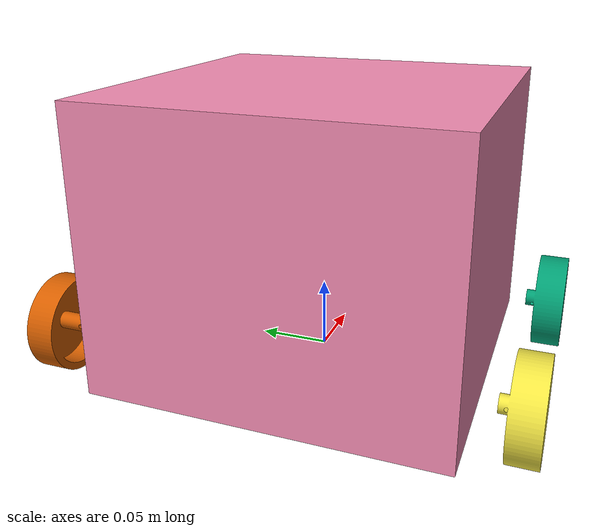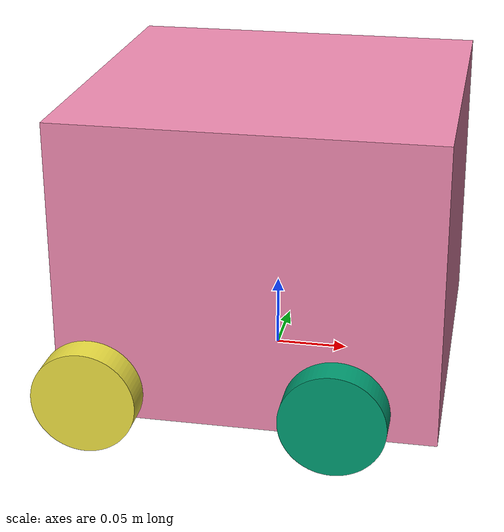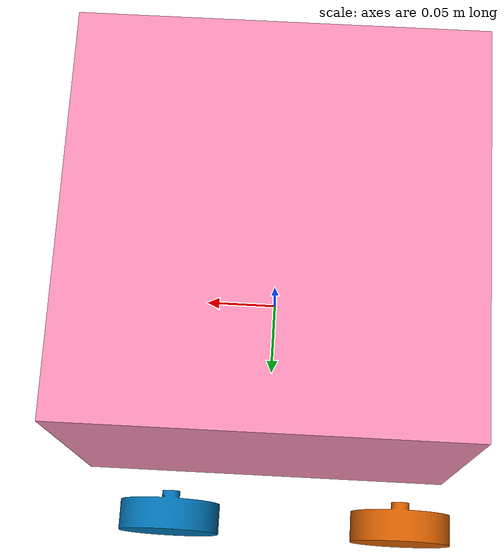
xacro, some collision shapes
<?xml version="1.0"?>
<robot xmlns:xacro="http://www.ros.org/wiki/xacro">

    <xacro:property name="base_length" value="0.25" />
    <xacro:property name="base_width" value="0.25" />
    <xacro:property name="base_wheel_x" value="-0.087" />
    <xacro:property name="base_wheel_x_front" value="0.07" />
    <xacro:property name="base_wheel_y" value="0.15" />
    <xacro:property name="base_wheel_z" value="-0.002" />
    <xacro:property name="base_height" value="0.3" />
    <xacro:property name="wheel_radius" value="0.035" />
    <xacro:property name="wheel_length" value="0.025" />

    <link name="base_link">
        <visual>
            <geometry>
                <mesh filename="package://kpbot_description/models/meshes/base.stl"/>

            </geometry>
            <origin xyz="0 0 0" rpy="0 0 0" />
            <material name="pink" />
        </visual>
        <collision>
            <geometry>
                <box size="${base_length} ${base_width} 0.2" />
            </geometry>
            <origin xyz="0 0 0.1" rpy="0 0 0" />
        </collision>
        <xacro:box_inertia m="1.0" l="${base_length}" w="${base_width}" h="${base_height}"
                           xyz="0 0 ${base_height / 2.0}" rpy="0 0 0" />
    </link>

    <!-- Hokuyo Laser -->
  <link name="base_scan">
    <collision>
      <origin xyz="0 0 0.0" rpy="0 0 1.57"/>
      <geometry>
    <cylinder radius="0.035" length="0.025" />
      </geometry>
    </collision>

    <visual>
      <origin xyz="0 0 0" rpy="0 0 1.57"/>
      <geometry>
        <cylinder radius="0.035" length="0.025" />
      </geometry>
      <material name="blue"/>
    </visual>
  </link>

    <xacro:macro name="wheel_link" params="prefix">

    </xacro:macro>

    <xacro:wheel_link prefix="back_right" />

    <link name="back_right_wheel_link">
        <visual>
            <geometry>
                <mesh filename="package://kpbot_description/models/meshes/wheel1.stl"/>
            </geometry>
                <origin xyz="-0.064 0.141 -0.035" rpy="0 0 0" />

            <material name="violet" />
        </visual>
        <collision>
            <geometry>
                <cylinder radius="${wheel_radius}" length="${wheel_length}" />
            </geometry>
            <origin xyz="0.07 -0.141 0.03" rpy="1.57 0 0" />
        </collision>
        <xacro:cylinder_inertia m="0.2" r="${wheel_radius}" h="${wheel_length}"
                                xyz="0 0 0" rpy="1.57 0 0" />
    </link>

    <link name="front_right_wheel_link">
        <visual>
            <geometry>
                <mesh filename="package://kpbot_description/models/meshes/wheel2.stl"/>
            </geometry>
                <origin xyz="0.092 0.141 -0.035" rpy="0 0 0" />

            <material name="violet" />
        </visual>
        <collision>
            <geometry>
                <cylinder radius="${wheel_radius}" length="${wheel_length}" />
            </geometry>
            <origin xyz="-0.087 -0.141 0.03" rpy="1.57 0 0" />
        </collision>
        <xacro:cylinder_inertia m="0.2" r="${wheel_radius}" h="${wheel_length}"
                                xyz="0 0 0" rpy="1.57 0 0" />
    </link>

    <link name="back_left_wheel_link">
        <visual>
            <geometry>
                <mesh filename="package://kpbot_description/models/meshes/wheel3.stl"/>
            </geometry>
                <origin xyz="-0.064 -0.15 -0.035" rpy="0 0 0" />

            <material name="violet" />
        </visual>
        <collision>
            <geometry>
                <cylinder radius="${wheel_radius}" length="${wheel_length}" />
            </geometry>
            <origin xyz="0.07 0.15 0.03" rpy="1.57 0 0" />
        </collision>
        <xacro:cylinder_inertia m="0.2" r="${wheel_radius}" h="${wheel_length}"
                                xyz="0 0 0" rpy="1.57 0 0" />
    </link>

    <link name="front_left_wheel_link">
        <visual>
            <geometry>
                <mesh filename="package://kpbot_description/models/meshes/wheel4.stl"/>
            </geometry>
                <origin xyz="0.092 -0.15 -0.035" rpy="0 0 0" />

            <material name="violet" />
        </visual>
        <collision>
            <geometry>
                <cylinder radius="${wheel_radius}" length="${wheel_length}" />
            </geometry>
            <origin xyz="-0.087 0.15 0.03" rpy="1.57 0 0" />
        </collision>
        <xacro:cylinder_inertia m="0.2" r="${wheel_radius}" h="${wheel_length}"
                                xyz="0 0 0" rpy="1.57 0 0" />
    </link>

    <joint name="back_right_joint" type="continuous">
        <parent link="base_link" />
        <child link="back_right_wheel_link" />
            <origin xyz="0.064 -0.141 0.035" rpy="0 0 0" />
        <axis xyz="0 1 0" />
    </joint>

    <joint name="front_right_joint" type="continuous">
        <parent link="base_link" />
        <child link="front_right_wheel_link" />
        <origin xyz="-0.092 -0.141 0.035" rpy="0 0 0" />
        <axis xyz="0 1 0" />
    </joint>

    <joint name="back_left_joint" type="continuous">
        <parent link="base_link" />
        <child link="back_left_wheel_link" />
            <origin xyz="0.064 0.15 0.035" rpy="0 0 0" />

        <axis xyz="0 1 0" />
    </joint>

    <joint name="front_left_joint" type="continuous">
        <parent link="base_link" />
        <child link="front_left_wheel_link" />
            <origin xyz="-0.092 0.15 0.035" rpy="0 0 0" />
        <axis xyz="0 1 0" />
    </joint>

    <joint name="laser_joint" type="fixed">
        <axis xyz="0 1 0" />
        <origin xyz="-0.03 0 0.145" rpy="0 0 3.14"/>
        <parent link="base_link"/>
        <child link="base_scan"/>
    </joint>

</robot>
